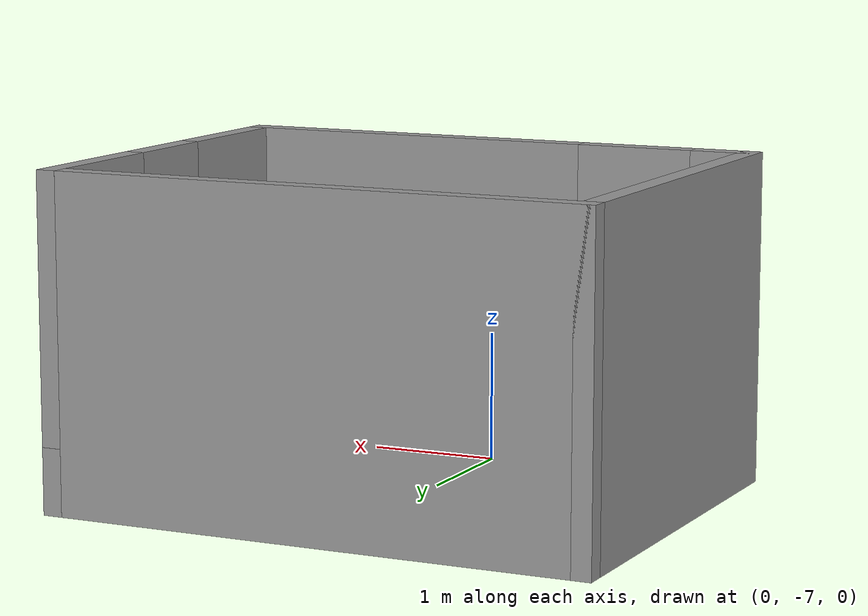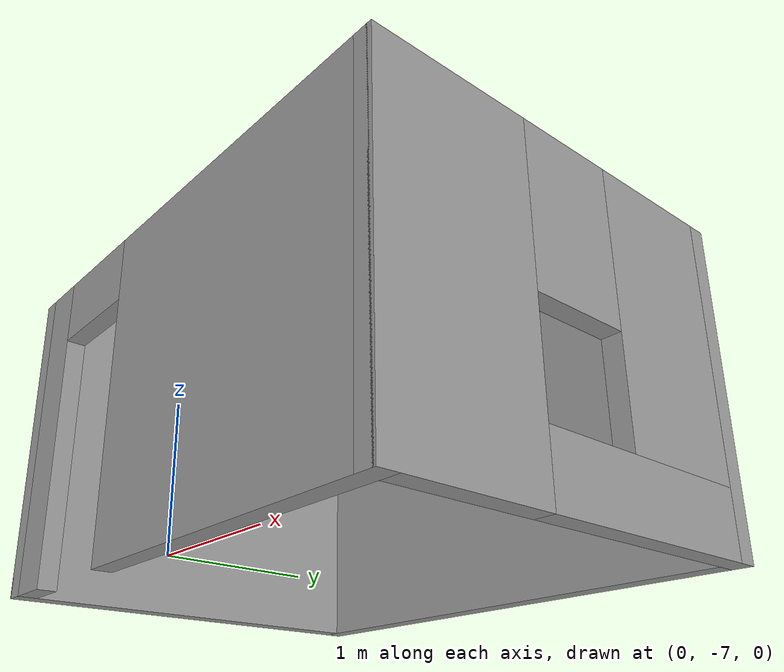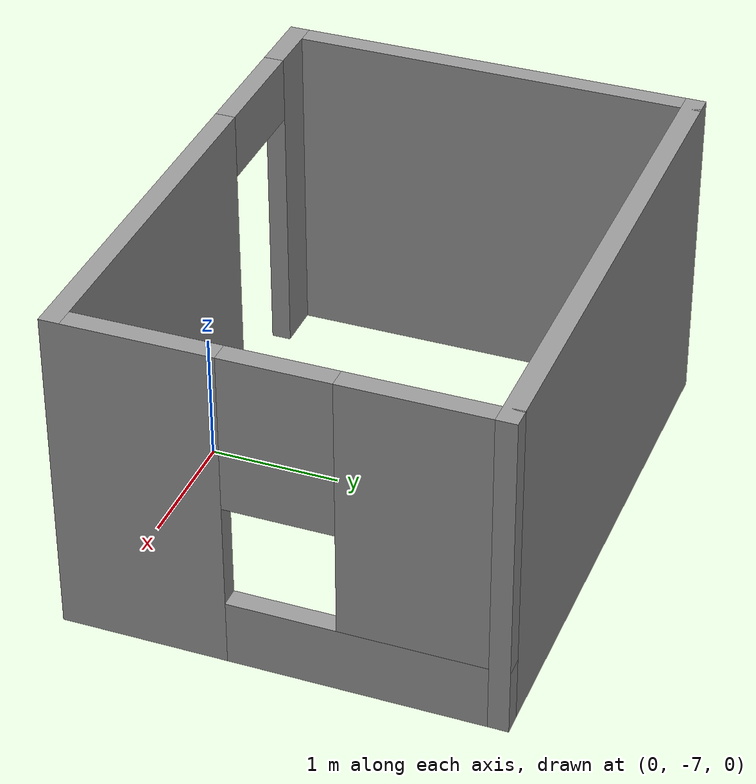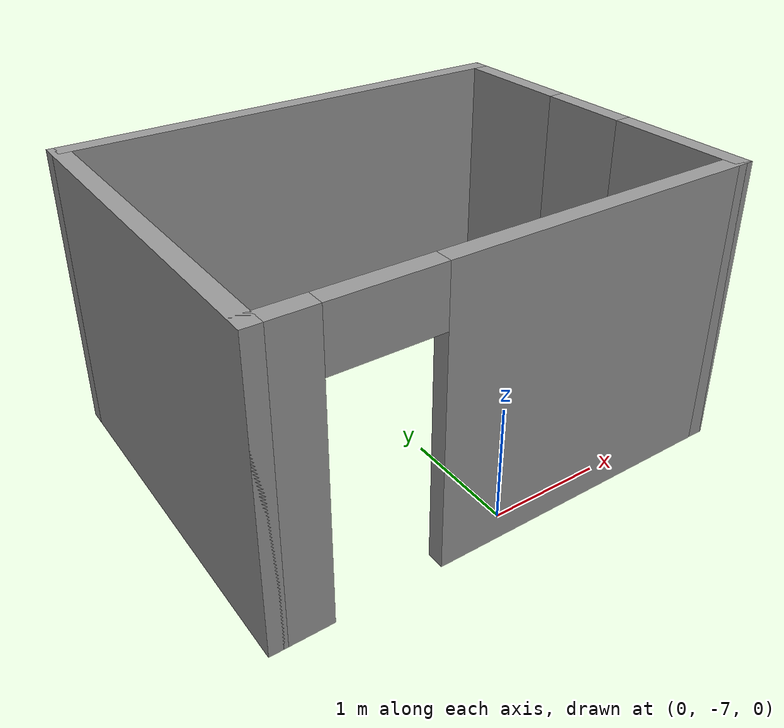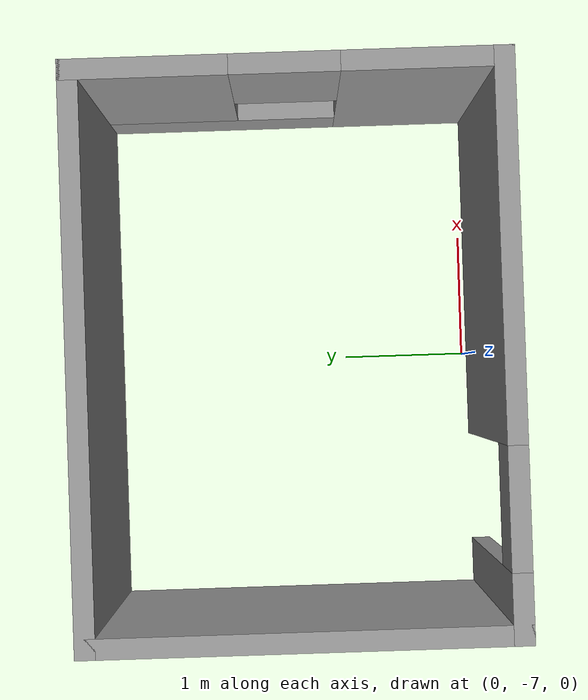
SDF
<?xml version='1.0'?>
<sdf version='1.7'>
  <model name='room'>
    <pose>0.02469 -3.59233 0 0 -0 0</pose>
    <link name='Wall_10'>
      <pose>-0 -3.51732 0 0 -0 0</pose>
      <visual name='Wall_10_Visual_0'>
        <pose>-1.8675 0 1.25 0 -0 0</pose>
        <geometry>
          <box>
            <size>0.515 0.15 2.5</size>
          </box>
        </geometry>
        <material>
          <script>
            <uri>file://media/materials/scripts/gazebo.material</uri>
            <name>Gazebo/Grey</name>
          </script>
          <ambient>1 1 1 1</ambient>
        </material>
        <meta>
          <layer>0</layer>
        </meta>
      </visual>
      <collision name='Wall_10_Collision_0'>
        <geometry>
          <box>
            <size>0.515 0.15 2.5</size>
          </box>
        </geometry>
        <pose>-1.8675 0 1.25 0 -0 0</pose>
      </collision>
      <visual name='Wall_10_Visual_1'>
        <pose>0.7075 0 1.25 0 -0 0</pose>
        <geometry>
          <box>
            <size>2.835 0.15 2.5</size>
          </box>
        </geometry>
        <material>
          <script>
            <uri>file://media/materials/scripts/gazebo.material</uri>
            <name>Gazebo/Grey</name>
          </script>
          <ambient>1 1 1 1</ambient>
        </material>
        <meta>
          <layer>0</layer>
        </meta>
      </visual>
      <collision name='Wall_10_Collision_1'>
        <geometry>
          <box>
            <size>2.835 0.15 2.5</size>
          </box>
        </geometry>
        <pose>0.7075 0 1.25 0 -0 0</pose>
      </collision>
      <visual name='Wall_10_Visual_2'>
        <pose>-1.16 0 2.25 0 -0 0</pose>
        <geometry>
          <box>
            <size>0.9 0.15 0.5</size>
          </box>
        </geometry>
        <material>
          <script>
            <uri>file://media/materials/scripts/gazebo.material</uri>
            <name>Gazebo/Grey</name>
          </script>
          <ambient>1 1 1 1</ambient>
        </material>
        <meta>
          <layer>0</layer>
        </meta>
      </visual>
      <collision name='Wall_10_Collision_2'>
        <geometry>
          <box>
            <size>0.9 0.15 0.5</size>
          </box>
        </geometry>
        <pose>-1.16 0 2.25 0 -0 0</pose>
      </collision>
    </link>
    <link name='Wall_11'>
      <pose>2.05 -1.96732 0 0 -0 1.5708</pose>
      <visual name='Wall_11_Visual_0'>
        <pose>-1.0075 0 1.25 0 -0 0</pose>
        <geometry>
          <box>
            <size>1.235 0.15 2.5</size>
          </box>
        </geometry>
        <material>
          <script>
            <uri>file://media/materials/scripts/gazebo.material</uri>
            <name>Gazebo/Grey</name>
          </script>
          <ambient>1 1 1 1</ambient>
        </material>
        <meta>
          <layer>0</layer>
        </meta>
      </visual>
      <collision name='Wall_11_Collision_0'>
        <geometry>
          <box>
            <size>1.235 0.15 2.5</size>
          </box>
        </geometry>
        <pose>-1.0075 0 1.25 0 -0 0</pose>
      </collision>
      <visual name='Wall_11_Visual_1'>
        <pose>0.6175 0 0.25 0 -0 0</pose>
        <geometry>
          <box>
            <size>2.015 0.15 0.5</size>
          </box>
        </geometry>
        <material>
          <script>
            <uri>file://media/materials/scripts/gazebo.material</uri>
            <name>Gazebo/Grey</name>
          </script>
          <ambient>1 1 1 1</ambient>
        </material>
        <meta>
          <layer>0</layer>
        </meta>
      </visual>
      <collision name='Wall_11_Collision_1'>
        <geometry>
          <box>
            <size>2.015 0.15 0.5</size>
          </box>
        </geometry>
        <pose>0.6175 0 0.25 0 -0 0</pose>
      </collision>
      <visual name='Wall_11_Visual_2'>
        <pose>1.0175 0 1.5 0 -0 0</pose>
        <geometry>
          <box>
            <size>1.215 0.15 2</size>
          </box>
        </geometry>
        <material>
          <script>
            <uri>file://media/materials/scripts/gazebo.material</uri>
            <name>Gazebo/Grey</name>
          </script>
          <ambient>1 1 1 1</ambient>
        </material>
        <meta>
          <layer>0</layer>
        </meta>
      </visual>
      <collision name='Wall_11_Collision_2'>
        <geometry>
          <box>
            <size>1.215 0.15 2</size>
          </box>
        </geometry>
        <pose>1.0175 0 1.5 0 -0 0</pose>
      </collision>
      <visual name='Wall_11_Visual_3'>
        <pose>0.01 0 1.9 0 -0 0</pose>
        <geometry>
          <box>
            <size>0.8 0.15 1.2</size>
          </box>
        </geometry>
        <material>
          <script>
            <uri>file://media/materials/scripts/gazebo.material</uri>
            <name>Gazebo/Grey</name>
          </script>
          <ambient>1 1 1 1</ambient>
        </material>
        <meta>
          <layer>0</layer>
        </meta>
      </visual>
      <collision name='Wall_11_Collision_3'>
        <geometry>
          <box>
            <size>0.8 0.15 1.2</size>
          </box>
        </geometry>
        <pose>0.01 0 1.9 0 -0 0</pose>
      </collision>
    </link>
    <link name='Wall_12'>
      <collision name='Wall_12_Collision'>
        <geometry>
          <box>
            <size>4.25 0.15 2.5</size>
          </box>
        </geometry>
        <pose>0 0 1.25 0 -0 0</pose>
      </collision>
      <visual name='Wall_12_Visual'>
        <pose>0 0 1.25 0 -0 0</pose>
        <geometry>
          <box>
            <size>4.25 0.15 2.5</size>
          </box>
        </geometry>
        <material>
          <script>
            <uri>file://media/materials/scripts/gazebo.material</uri>
            <name>Gazebo/Grey</name>
          </script>
          <ambient>1 1 1 1</ambient>
        </material>
        <meta>
          <layer>0</layer>
        </meta>
      </visual>
      <pose>-0 -0.417325 0 0 -0 3.14159</pose>
    </link>
    <link name='Wall_9'>
      <collision name='Wall_9_Collision'>
        <geometry>
          <box>
            <size>3.25 0.15 2.5</size>
          </box>
        </geometry>
        <pose>0 0 1.25 0 -0 0</pose>
      </collision>
      <visual name='Wall_9_Visual'>
        <pose>0 0 1.25 0 -0 0</pose>
        <geometry>
          <box>
            <size>3.25 0.15 2.5</size>
          </box>
        </geometry>
        <material>
          <script>
            <uri>file://media/materials/scripts/gazebo.material</uri>
            <name>Gazebo/Grey</name>
          </script>
          <ambient>1 1 1 1</ambient>
        </material>
        <meta>
          <layer>0</layer>
        </meta>
      </visual>
      <pose>-2.05 -1.96732 0 0 -0 -1.5708</pose>
    </link>
    <static>1</static>
  </model>
</sdf>
